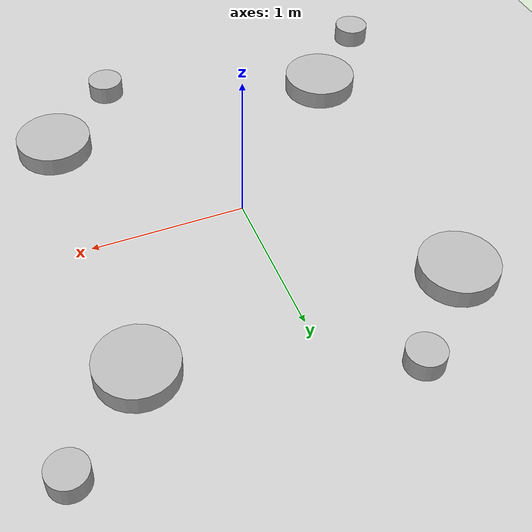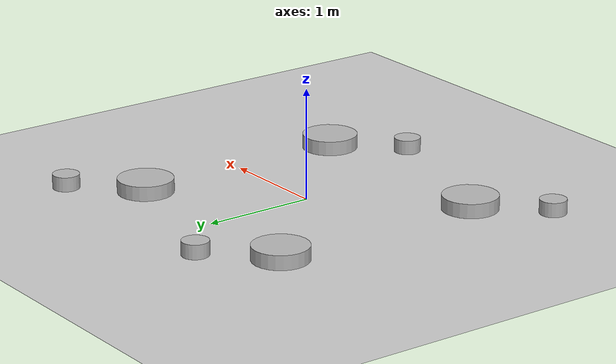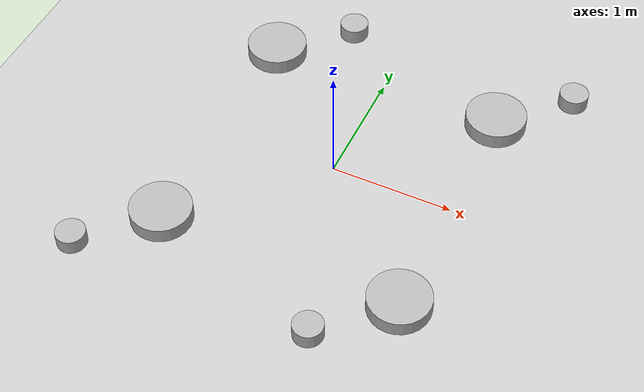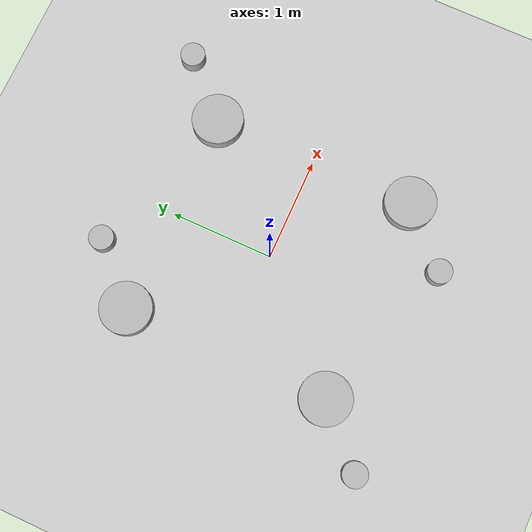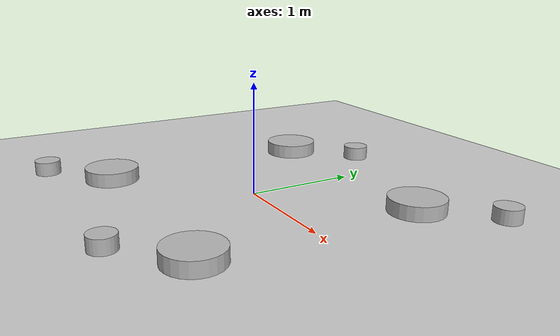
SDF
<sdf version="1.6">
 <world name="default">
  <include><uri>model://sun</uri></include>
  <include><uri>model://ground_plane</uri></include>
  <physics type="ode">
   <real_time_update_rate>1000.0</real_time_update_rate>
   <max_step_size>0.001</max_step_size>
   <real_time_factor>1</real_time_factor>
   <ode>
    <solver>
     <type>quick</type>
     <iters>150</iters>
     <precon_iters>0</precon_iters>
     <sor>1.400000</sor>
     <use_dynamic_moi_rescaling>1</use_dynamic_moi_rescaling>
    </solver>
    <constraints>
     <cfm>0.00001</cfm>
     <erp>0.2</erp>
     <contact_max_correcting_vel>2000.000000</contact_max_correcting_vel>
     <contact_surface_layer>0.01000</contact_surface_layer>
    </constraints>
   </ode>
  </physics>
  <model name="static_obstacle_1">
   <pose>-1 1 0 0 0 0</pose>
   <link name="link">
    <collision name="collision">
     <geometry><cylinder><radius>0.25</radius><length>0.25</length></cylinder></geometry>
    </collision>
    <visual name="visual">
     <geometry><cylinder><radius>0.25</radius><length>0.25</length></cylinder></geometry>
    </visual>
   </link>
  </model>
  <model name="static_obstacle_2">
   <pose>1 1 0 0 0 0</pose>
   <link name="link">
    <collision name="collision">
     <geometry><cylinder><radius>0.25</radius><length>0.25</length></cylinder></geometry>
    </collision>
    <visual name="visual">
     <geometry><cylinder><radius>0.25</radius><length>0.25</length></cylinder></geometry>
    </visual>
   </link>
   <plugin name="static_obstacle_2" filename="libobstacle_2.so"/>
  </model>
  <model name="static_obstacle_3">
   <pose>-1 -1 0 0 0 0</pose>
   <link name="link">
    <collision name="collision">
     <geometry><cylinder><radius>0.25</radius><length>0.25</length></cylinder></geometry>
    </collision>
    <visual name="visual">
     <geometry><cylinder><radius>0.25</radius><length>0.25</length></cylinder></geometry>
    </visual>
   </link>
  </model>
  <model name="static_obstacle_4">
   <pose>1 -1 0 0 0 0</pose>
   <link name="link">
    <collision name="collision">
     <geometry><cylinder><radius>0.25</radius><length>0.25</length></cylinder></geometry>
    </collision>
    <visual name="visual">
     <geometry><cylinder><radius>0.25</radius><length>0.25</length></cylinder></geometry>
    </visual>
   </link>
  </model>
  <model name="obstacle_1">
   <pose>-1.5 -1.5 0 0 0 0</pose>
   <link name="link">
    <collision name="collision">
     <geometry><cylinder><radius>0.12</radius><length>0.25</length></cylinder></geometry>
    </collision>
    <visual name="visual">
     <geometry><cylinder><radius>0.12</radius><length>0.25</length></cylinder></geometry>
    </visual>
   </link>
  </model>
  <model name="obstacle_2">
   <pose>-0.5 1.5 0 0 0 0</pose>
   <link name="link">
    <collision name="collision">
     <geometry><cylinder><radius>0.12</radius><length>0.25</length></cylinder></geometry>
    </collision>
    <visual name="visual">
     <geometry><cylinder><radius>0.12</radius><length>0.25</length></cylinder></geometry>
    </visual>
   </link>
   <plugin name="obstacle_2" filename="libobstacle_2.so"/>
  </model>
  <model name="obstacle_3">
   <pose>0.5 -1.5 0 0 0 0</pose>
   <link name="link">
    <collision name="collision">
     <geometry><cylinder><radius>0.12</radius><length>0.25</length></cylinder></geometry>
    </collision>
    <visual name="visual">
     <geometry><cylinder><radius>0.12</radius><length>0.25</length></cylinder></geometry>
    </visual>
   </link>
  </model>
  <model name="obstacle_4">
   <pose>1.5 1.5 0 0 0 0</pose>
   <link name="link">
    <collision name="collision">
     <geometry><cylinder><radius>0.12</radius><length>0.25</length></cylinder></geometry>
    </collision>
    <visual name="visual">
     <geometry><cylinder><radius>0.12</radius><length>0.25</length></cylinder></geometry>
    </visual>
   </link>
  </model>
  <scene><ambient>0.4 0.4 0.4 1</ambient><background>0.7 0.7 0.7 1</background><shadows>true</shadows></scene>
 </world>
</sdf>
